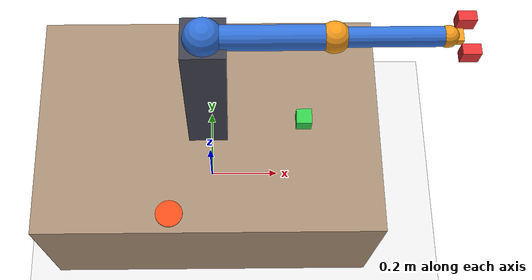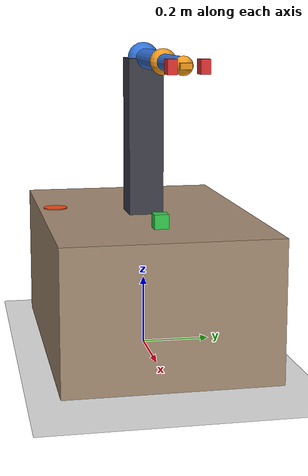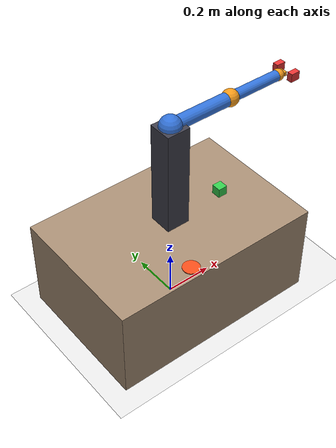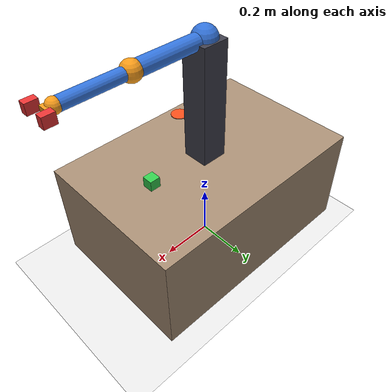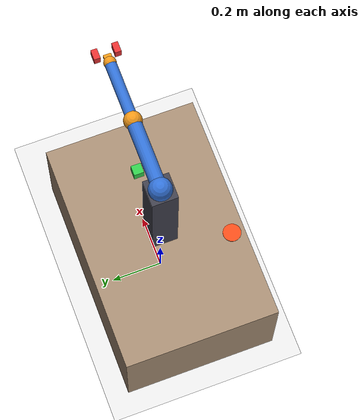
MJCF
<mujoco model="robot_arm">
  <!-- 角度单位用弧度，物理步长 4ms (250Hz)，保证接触仿真稳定 -->
  <compiler angle="radian"/>
  <option timestep="0.004" gravity="0 0 -9.81" iterations="50"/>

  <!-- 默认值: 所有几何体的摩擦系数、所有关节的阻尼/惯性 -->
  <default>
    <geom type="capsule" rgba="0.35 0.35 0.4 1"
          friction="1 0.1 0.1" solimp="0.9 0.95 0.001" solref="0.002 1"/>
    <joint damping="0.05" armature="0.01"/>
  </default>

  <!-- 自碰撞排除:
       相邻连杆在关节附近几何必然重叠 (肩关节球体与基座柱、上臂与基座柱)。
       若不做排除，机器人会被自己的"身体"卡住，无法正常转动。
       注意: 排除的是 base 与手臂各段之间的碰撞，不影响手臂与桌面/方块接触。 -->
  <contact>
    <exclude body1="base" body2="shoulder"/>
    <exclude body1="base" body2="upper_arm"/>
    <exclude body1="base" body2="elbow"/>
    <exclude body1="base" body2="forearm"/>
    <!-- 手指与手臂本体的自碰撞也要排除:
         手指闭合时会自然贴近前臂末端, 若不排除会被自己卡住而无法夹紧方块 -->
    <exclude body1="forearm" body2="left_finger"/>
    <exclude body1="forearm" body2="right_finger"/>
    <exclude body1="wrist" body2="left_finger"/>
    <exclude body1="wrist" body2="right_finger"/>
    <exclude body1="gripper_base" body2="left_finger"/>
    <exclude body1="gripper_base" body2="right_finger"/>
  </contact>

  <worldbody>
    <light name="light0" pos="1 1 2.5" dir="-1 -1 -2" diffuse="0.9 0.9 0.9"/>
    <geom name="floor" type="plane" size="2 2 0.1" rgba="0.9 0.9 0.9 1"/>

    <!-- 桌面 (顶面在 z=0.4) -->
    <geom name="table" type="box" size="0.45 0.3 0.2" pos="0 0 0.2"
          rgba="0.65 0.55 0.45 1"/>

    <!-- 基座: 固定在桌面上, 肩关节抬高到 0.85m。
         为什么要这么高? 手臂下探抓取方块时, 肘部不能碰到桌面 (0.4m)。
         肩部越高, 手臂越能以"肘高"姿态工作, 避免肘部落到桌面以下。 -->
    <body name="base" pos="0 0 0.4">
      <geom name="base_geom" type="box" size="0.05 0.05 0.225" pos="0 0 0.225"
            rgba="0.25 0.25 0.3 1"/>

      <!-- 肩部: shoulder_yaw 关节 (绕世界 Z 轴旋转，改变手臂朝向) -->
      <body name="shoulder" pos="0 0 0.45">
        <joint name="shoulder_yaw" type="hinge" axis="0 0 1" range="-3.14 3.14"/>
        <geom name="shoulder_geom" type="sphere" size="0.045" rgba="0.2 0.45 0.85 1"/>

        <!-- 上臂: shoulder_pitch 关节 (绕 Y 轴俯仰) -->
        <body name="upper_arm" pos="0 0 0">
          <joint name="shoulder_pitch" type="hinge" axis="0 1 0" range="-2.5 2.5"/>
          <geom name="upper_arm_geom" type="capsule" size="0.028"
                fromto="0 0 0 0.28 0 0" rgba="0.2 0.45 0.85 1"/>

          <!-- 肘部: elbow_pitch 关节 -->
          <body name="elbow" pos="0.28 0 0">
            <joint name="elbow_pitch" type="hinge" axis="0 1 0" range="-2.5 2.5"/>
            <geom name="elbow_geom" type="sphere" size="0.035" rgba="0.95 0.6 0.1 1"/>

            <!-- 前臂 (无关节，纯粹几何体) -->
            <body name="forearm" pos="0 0 0">
              <geom name="forearm_geom" type="capsule" size="0.022"
                    fromto="0 0 0 0.24 0 0" rgba="0.2 0.45 0.85 1"/>

              <!-- 腕部: wrist_pitch 关节 (控制夹爪朝向) -->
              <body name="wrist" pos="0.24 0 0">
                <joint name="wrist_pitch" type="hinge" axis="0 1 0" range="-2.5 2.5"/>
                <geom name="wrist_geom" type="sphere" size="0.024" rgba="0.95 0.6 0.1 1"/>

                <!-- 夹爪基座: 小方块, 避免与被抓物体碰撞 -->
                <body name="gripper_base" pos="0 0 0">
                  <geom name="gripper_base_geom" type="box"
                        size="0.012 0.015 0.008" pos="0.02 0 0" rgba="0.95 0.6 0.1 1"/>

                  <!-- 左手指: 平直手指 (平面法向无楔形效应, 抬升可靠) -->
                  <body name="left_finger" pos="0.03 -0.04 0">
                    <joint name="left_finger" type="slide" axis="0 1 0" range="0 0.05" armature="0.02" damping="0.5"/>
                    <geom name="left_finger_geom" type="box"
                          size="0.02 0.012 0.018" pos="0.012 0 0" rgba="0.9 0.2 0.2 1"/>
                  </body>

                  <!-- 右手指: 平直手指 -->
                  <body name="right_finger" pos="0.03 0.04 0">
                    <joint name="right_finger" type="slide" axis="0 -1 0" range="0 0.05" armature="0.02" damping="0.5"/>
                    <geom name="right_finger_geom" type="box"
                          size="0.02 0.012 0.018" pos="0.012 0 0" rgba="0.9 0.2 0.2 1"/>
                  </body>
                </body>
              </body>
            </body>
          </body>
        </body>
      </body>
    </body>

    <camera name="side" pos="0.1 -1.1 0.75" xyaxes="1 0 0 0 0.35 0.94"
            fovy="55"/>
    <camera name="top" pos="0 0 1.3" xyaxes="1 0 0 0 -1 0" fovy="50"/>

    <!-- 被抓取的方块: 简单立方体, freejoint 赋予其 6 自由度 -->
    <body name="block" pos="0.25 0.0 0.42">
      <freejoint/>
      <geom name="block_geom" type="box" size="0.02 0.02 0.02"
            rgba="0.2 0.8 0.3 1" mass="0.05" friction="1.5 0.2 0.1"/>
    </body>

    <!-- 目标落点标记: 只做可视化，不影响物理 -->
    <body name="target" pos="-0.1 -0.25 0.401">
      <geom name="target_geom" type="cylinder" size="0.035 0.002"
            rgba="0.95 0.3 0.1 0.9" mass="0" contype="0" conaffinity="0"/>
    </body>
      </worldbody>

  <!-- 执行器: 4 个位置伺服 (关节) + 2 个位置伺服 (手指) -->
  <actuator>
    <position name="shoulder_yaw_act"   joint="shoulder_yaw"   kp="200" ctrlrange="-3.14 3.14"/>
    <position name="shoulder_pitch_act" joint="shoulder_pitch" kp="200" ctrlrange="-2.5 2.5"/>
    <position name="elbow_pitch_act"    joint="elbow_pitch"    kp="200" ctrlrange="-2.5 2.5"/>
    <position name="wrist_pitch_act"    joint="wrist_pitch"    kp="200" ctrlrange="-2.5 2.5"/>
    <position name="left_finger_act"    joint="left_finger"    kp="2000" ctrlrange="0 0.05"/>
    <position name="right_finger_act"   joint="right_finger"   kp="2000" ctrlrange="0 0.05"/>
  </actuator>
</mujoco>
